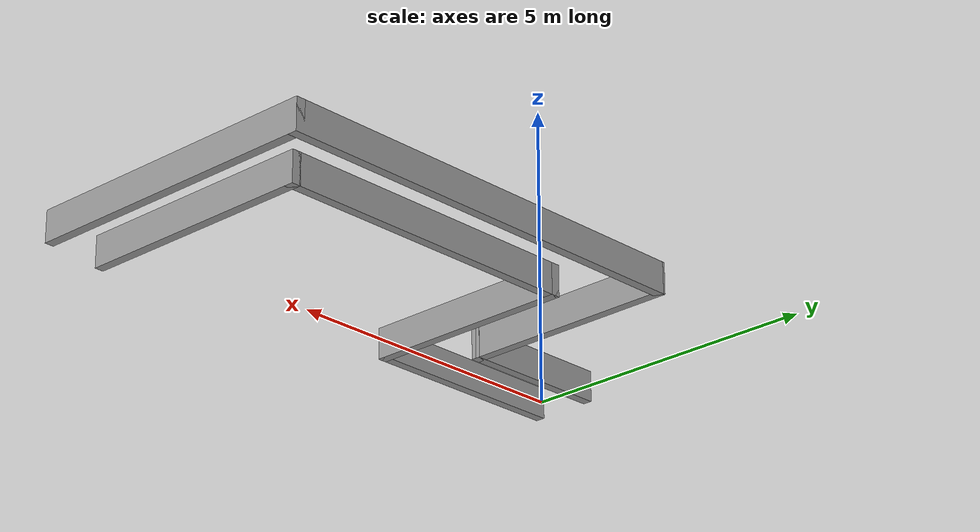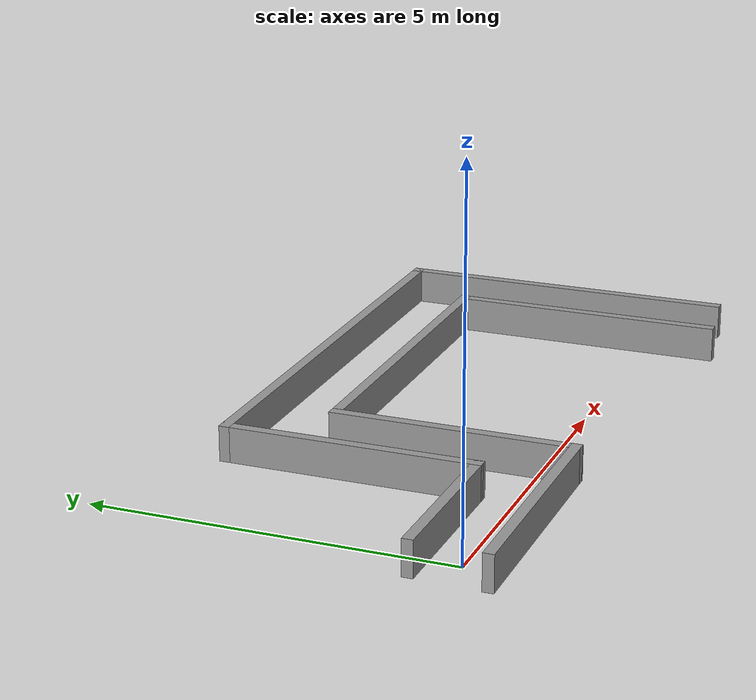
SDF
<?xml version='1.0'?>
<sdf version='1.6'>
  <model name='Epuck_LIDAR_ENV'>
    <pose frame=''>4.2905 1.504 0 0 -0 0</pose>
    <link name='Wall_21'>
      <collision name='Wall_21_Collision'>
        <geometry>
          <box>
            <size>7.25 0.15 0.5</size>
          </box>
        </geometry>
        <pose frame=''>0 0 0.25 0 -0 0</pose>
      </collision>
      <visual name='Wall_21_Visual'>
        <pose frame=''>0 0 0.25 0 -0 0</pose>
        <geometry>
          <box>
            <size>7.25 0.15 0.5</size>
          </box>
        </geometry>
        <material>
          <script>
            <uri>file://media/materials/scripts/gazebo.material</uri>
            <name>Gazebo/Grey</name>
          </script>
          <ambient>1 1 1 1</ambient>
        </material>
        <meta>
          <layer>0</layer>
        </meta>
      </visual>
      <pose frame=''>1.1875 2.501 0 0 -0 0</pose>
    </link>
    <link name='Wall_27'>
      <collision name='Wall_27_Collision'>
        <geometry>
          <box>
            <size>3.657 0.15 0.5</size>
          </box>
        </geometry>
        <pose frame=''>0 0 0.25 0 -0 0</pose>
      </collision>
      <visual name='Wall_27_Visual'>
        <pose frame=''>0 0 0.25 0 -0 0</pose>
        <geometry>
          <box>
            <size>3.657 0.15 0.5</size>
          </box>
        </geometry>
        <material>
          <script>
            <uri>file://media/materials/scripts/gazebo.material</uri>
            <name>Gazebo/Grey</name>
          </script>
          <ambient>1 1 1 1</ambient>
        </material>
        <meta>
          <layer>0</layer>
        </meta>
      </visual>
      <pose frame=''>-2.3625 0.7475 0 0 0 -1.5708</pose>
    </link>
    <link name='Wall_28'>
      <collision name='Wall_28_Collision'>
        <geometry>
          <box>
            <size>2.5 0.15 0.5</size>
          </box>
        </geometry>
        <pose frame=''>0 0 0.25 0 -0 0</pose>
      </collision>
      <visual name='Wall_28_Visual'>
        <pose frame=''>0 0 0.25 0 -0 0</pose>
        <geometry>
          <box>
            <size>2.5 0.15 0.5</size>
          </box>
        </geometry>
        <material>
          <script>
            <uri>file://media/materials/scripts/gazebo.material</uri>
            <name>Gazebo/Grey</name>
          </script>
          <ambient>1 1 1 1</ambient>
        </material>
        <meta>
          <layer>0</layer>
        </meta>
      </visual>
      <pose frame=''>-3.5375 -1.0005 0 0 -0 3.13691</pose>
    </link>
    <link name='Wall_38'>
      <collision name='Wall_38_Collision'>
        <geometry>
          <box>
            <size>5 0.15 0.5</size>
          </box>
        </geometry>
        <pose frame=''>0 0 0.25 0 -0 0</pose>
      </collision>
      <visual name='Wall_38_Visual'>
        <pose frame=''>0 0 0.25 0 -0 0</pose>
        <geometry>
          <box>
            <size>5 0.15 0.5</size>
          </box>
        </geometry>
        <material>
          <script>
            <uri>file://media/materials/scripts/gazebo.material</uri>
            <name>Gazebo/Grey</name>
          </script>
          <ambient>1 1 1 1</ambient>
        </material>
        <meta>
          <layer>0</layer>
        </meta>
      </visual>
      <pose frame=''>4.7375 0.076 0 0 0 -1.5708</pose>
    </link>
    <link name='Wall_43'>
      <collision name='Wall_43_Collision'>
        <geometry>
          <box>
            <size>3.5 0.15 0.5</size>
          </box>
        </geometry>
        <pose frame=''>0 0 0.25 0 -0 0</pose>
      </collision>
      <visual name='Wall_43_Visual'>
        <pose frame=''>0 0 0.25 0 -0 0</pose>
        <geometry>
          <box>
            <size>3.5 0.15 0.5</size>
          </box>
        </geometry>
        <material>
          <script>
            <uri>file://media/materials/scripts/gazebo.material</uri>
            <name>Gazebo/Grey</name>
          </script>
          <ambient>1 1 1 1</ambient>
        </material>
        <meta>
          <layer>0</layer>
        </meta>
      </visual>
      <pose frame=''>-3.0625 -2.001 0 0 -0 0</pose>
    </link>
    <link name='Wall_46'>
      <collision name='Wall_46_Collision'>
        <geometry>
          <box>
            <size>3.5 0.15 0.5</size>
          </box>
        </geometry>
        <pose frame=''>0 0 0.25 0 -0 0</pose>
      </collision>
      <visual name='Wall_46_Visual'>
        <pose frame=''>0 0 0.25 0 -0 0</pose>
        <geometry>
          <box>
            <size>3.5 0.15 0.5</size>
          </box>
        </geometry>
        <material>
          <script>
            <uri>file://media/materials/scripts/gazebo.material</uri>
            <name>Gazebo/Grey</name>
          </script>
          <ambient>1 1 1 1</ambient>
        </material>
        <meta>
          <layer>0</layer>
        </meta>
      </visual>
      <pose frame=''>-1.3875 -0.326 0 0 -0 1.5708</pose>
    </link>
    <link name='Wall_47'>
      <collision name='Wall_47_Collision'>
        <geometry>
          <box>
            <size>5.25 0.15 0.5</size>
          </box>
        </geometry>
        <pose frame=''>0 0 0.25 0 -0 0</pose>
      </collision>
      <visual name='Wall_47_Visual'>
        <pose frame=''>0 0 0.25 0 -0 0</pose>
        <geometry>
          <box>
            <size>5.25 0.15 0.5</size>
          </box>
        </geometry>
        <material>
          <script>
            <uri>file://media/materials/scripts/gazebo.material</uri>
            <name>Gazebo/Grey</name>
          </script>
          <ambient>1 1 1 1</ambient>
        </material>
        <meta>
          <layer>0</layer>
        </meta>
      </visual>
      <pose frame=''>1.1625 1.349 0 0 -0 0</pose>
    </link>
    <link name='Wall_48'>
      <collision name='Wall_48_Collision'>
        <geometry>
          <box>
            <size>4 0.15 0.5</size>
          </box>
        </geometry>
        <pose frame=''>0 0 0.25 0 -0 0</pose>
      </collision>
      <visual name='Wall_48_Visual'>
        <pose frame=''>0 0 0.25 0 -0 0</pose>
        <geometry>
          <box>
            <size>4 0.15 0.5</size>
          </box>
        </geometry>
        <material>
          <script>
            <uri>file://media/materials/scripts/gazebo.material</uri>
            <name>Gazebo/Grey</name>
          </script>
          <ambient>1 1 1 1</ambient>
        </material>
        <meta>
          <layer>0</layer>
        </meta>
      </visual>
      <pose frame=''>3.7125 -0.576 0 0 0 -1.5708</pose>
    </link>
    <static>1</static>
  </model>
</sdf>
